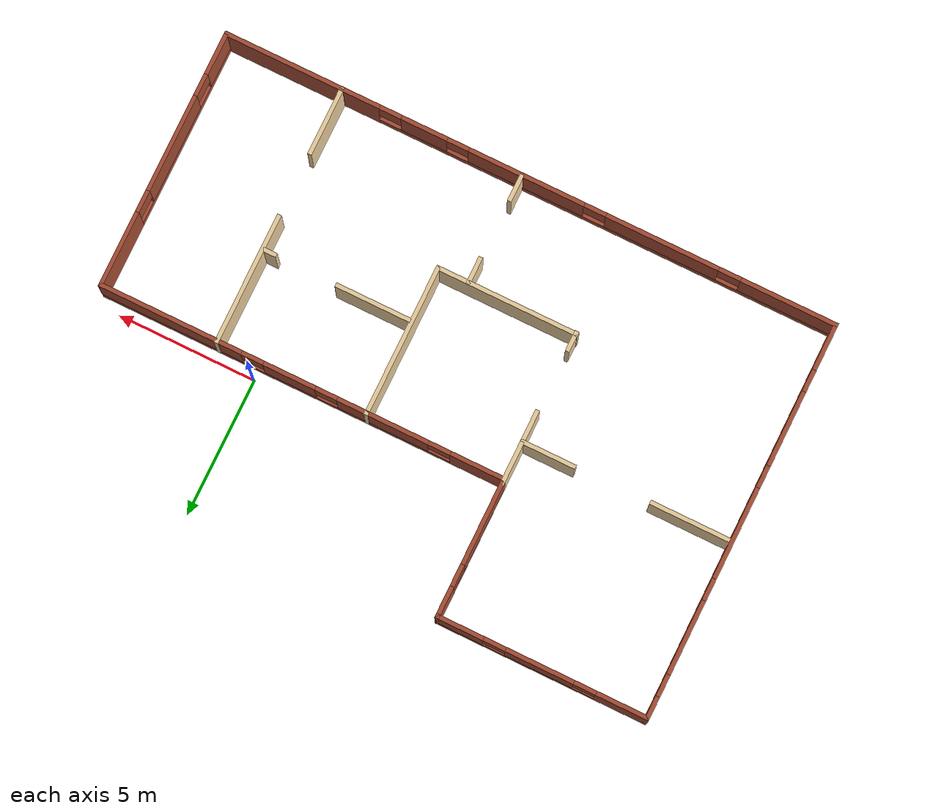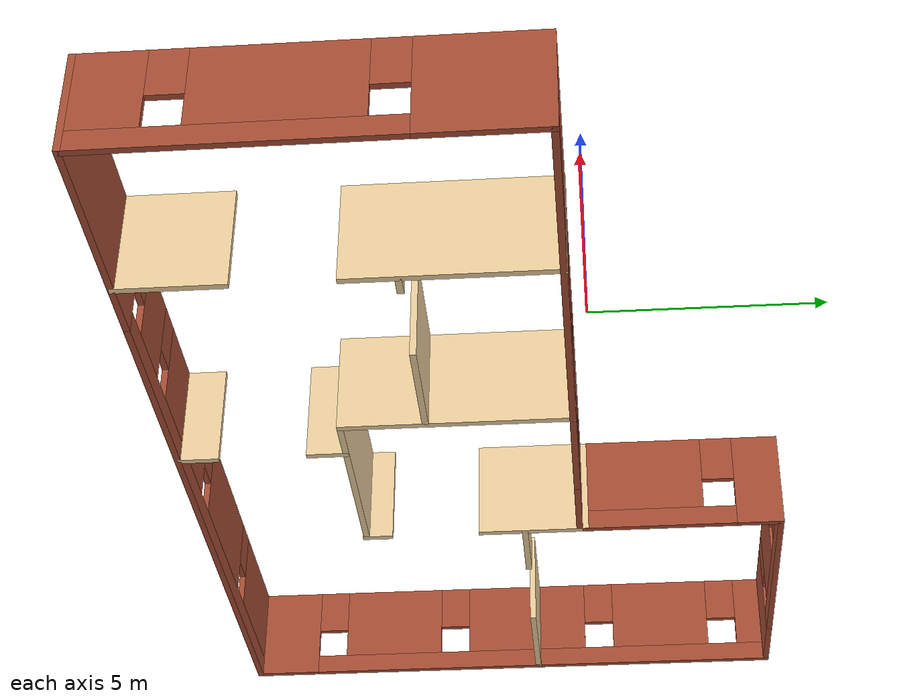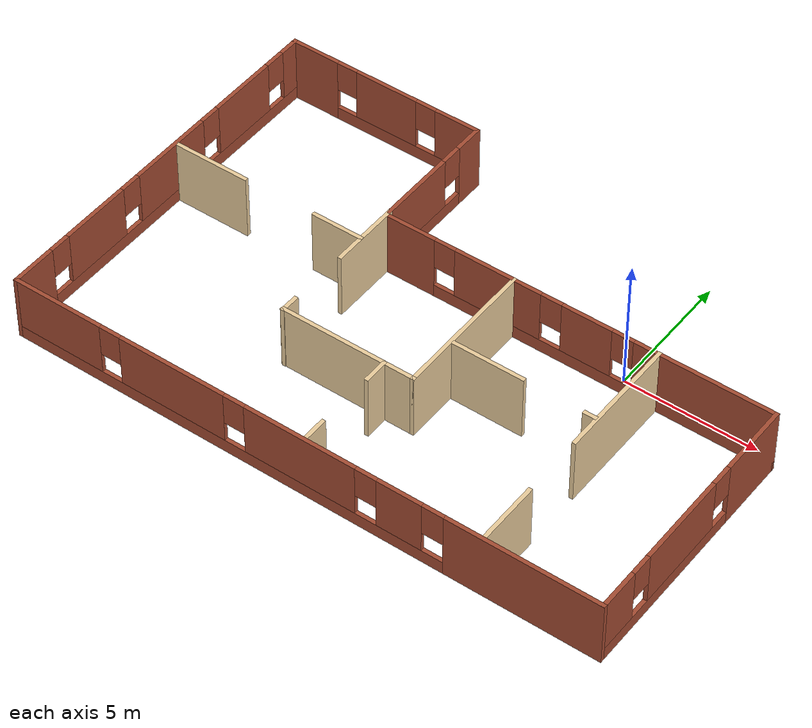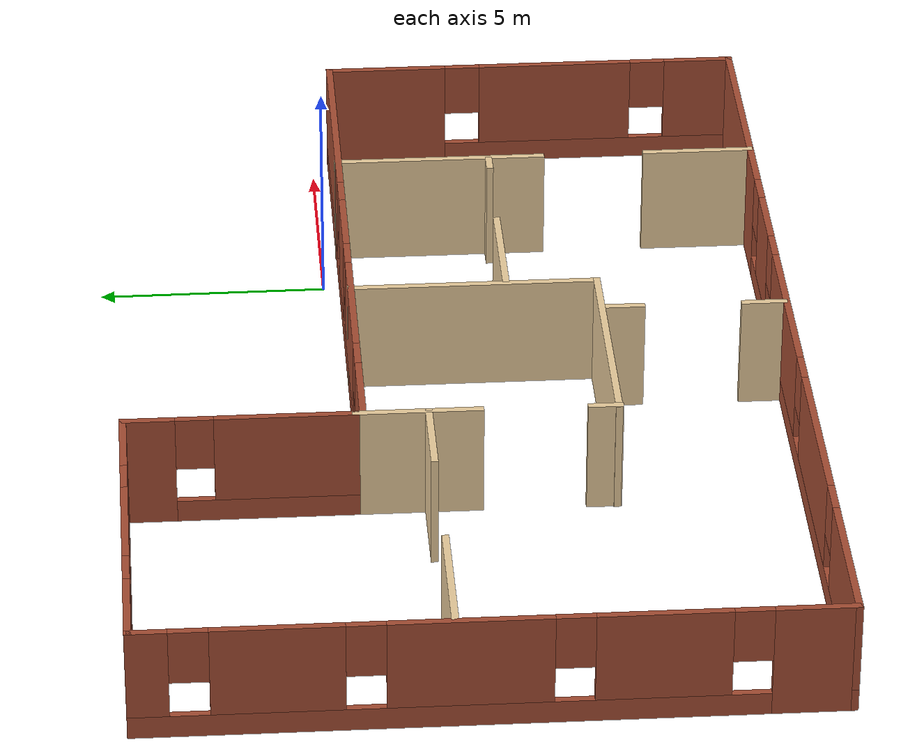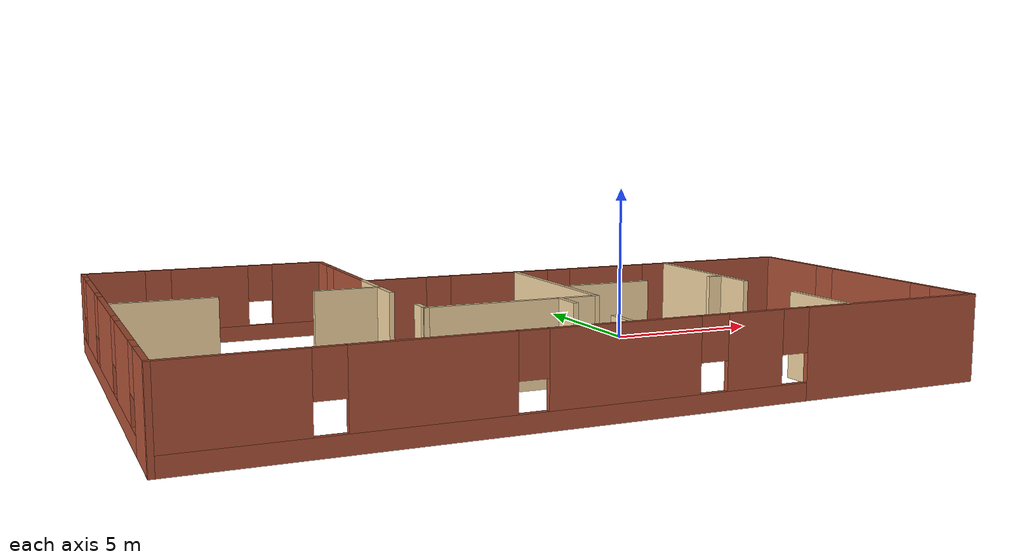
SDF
<?xml version='1.0'?>
<sdf version='1.6'>
  <model name='building'>
    <pose frame=''>-5.47568 -2.60431 0 0 -0 0</pose>
    <link name='Wall_101'>
      <pose frame=''>-3.575 4.75 0 0 -0 -1.5708</pose>
      <visual name='Wall_101_Visual_0'>
        <pose frame=''>-1.91994 0 1.25 0 -0 0</pose>
        <geometry>
          <box>
            <size>1.16012 0.15 2.5</size>
          </box>
        </geometry>
        <material>
          <script>
            <uri>file://media/materials/scripts/gazebo.material</uri>
            <name>Gazebo/Bricks</name>
          </script>
          <ambient>1 1 1 1</ambient>
        </material>
        <meta>
          <layer>0</layer>
        </meta>
      </visual>
      <collision name='Wall_101_Collision_0'>
        <geometry>
          <box>
            <size>1.16012 0.15 2.5</size>
          </box>
        </geometry>
        <pose frame=''>-1.91994 0 1.25 0 -0 0</pose>
      </collision>
      <visual name='Wall_101_Visual_1'>
        <pose frame=''>0.580059 0 0.25 0 -0 0</pose>
        <geometry>
          <box>
            <size>3.83988 0.15 0.5</size>
          </box>
        </geometry>
        <material>
          <script>
            <uri>file://media/materials/scripts/gazebo.material</uri>
            <name>Gazebo/Bricks</name>
          </script>
          <ambient>1 1 1 1</ambient>
        </material>
        <meta>
          <layer>0</layer>
        </meta>
      </visual>
      <collision name='Wall_101_Collision_1'>
        <geometry>
          <box>
            <size>3.83988 0.15 0.5</size>
          </box>
        </geometry>
        <pose frame=''>0.580059 0 0.25 0 -0 0</pose>
      </collision>
      <visual name='Wall_101_Visual_2'>
        <pose frame=''>0.980059 0 1.5 0 -0 0</pose>
        <geometry>
          <box>
            <size>3.03988 0.15 2</size>
          </box>
        </geometry>
        <material>
          <script>
            <uri>file://media/materials/scripts/gazebo.material</uri>
            <name>Gazebo/Bricks</name>
          </script>
          <ambient>1 1 1 1</ambient>
        </material>
        <meta>
          <layer>0</layer>
        </meta>
      </visual>
      <collision name='Wall_101_Collision_2'>
        <geometry>
          <box>
            <size>3.03988 0.15 2</size>
          </box>
        </geometry>
        <pose frame=''>0.980059 0 1.5 0 -0 0</pose>
      </collision>
      <visual name='Wall_101_Visual_3'>
        <pose frame=''>-0.939883 0 1.9 0 -0 0</pose>
        <geometry>
          <box>
            <size>0.8 0.15 1.2</size>
          </box>
        </geometry>
        <material>
          <script>
            <uri>file://media/materials/scripts/gazebo.material</uri>
            <name>Gazebo/Bricks</name>
          </script>
          <ambient>1 1 1 1</ambient>
        </material>
        <meta>
          <layer>0</layer>
        </meta>
      </visual>
      <collision name='Wall_101_Collision_3'>
        <geometry>
          <box>
            <size>0.8 0.15 1.2</size>
          </box>
        </geometry>
        <pose frame=''>-0.939883 0 1.9 0 -0 0</pose>
      </collision>
    </link>
    <link name='Wall_103'>
      <collision name='Wall_103_Collision'>
        <geometry>
          <box>
            <size>2.75 0.15 2.5</size>
          </box>
        </geometry>
        <pose frame=''>0 0 1.25 0 -0 0</pose>
      </collision>
      <visual name='Wall_103_Visual'>
        <pose frame=''>0 0 1.25 0 -0 0</pose>
        <geometry>
          <box>
            <size>2.75 0.15 2.5</size>
          </box>
        </geometry>
        <material>
          <script>
            <uri>file://media/materials/scripts/gazebo.material</uri>
            <name>Gazebo/Grey</name>
          </script>
          <ambient>0.921569 0.807843 0.615686 1</ambient>
        </material>
        <meta>
          <layer>0</layer>
        </meta>
      </visual>
      <pose frame=''>-3.575 1.025 0 0 -0 -1.5708</pose>
    </link>
    <link name='Wall_19'>
      <pose frame=''>3.875 2.175 0 0 -0 0</pose>
      <visual name='Wall_19_Visual_0'>
        <pose frame=''>-6.43713 0 1.25 0 -0 0</pose>
        <geometry>
          <box>
            <size>1.87573 0.15 2.5</size>
          </box>
        </geometry>
        <material>
          <script>
            <uri>file://media/materials/scripts/gazebo.material</uri>
            <name>Gazebo/Bricks</name>
          </script>
          <ambient>1 1 1 1</ambient>
        </material>
        <meta>
          <layer>0</layer>
        </meta>
      </visual>
      <collision name='Wall_19_Collision_0'>
        <geometry>
          <box>
            <size>1.87573 0.15 2.5</size>
          </box>
        </geometry>
        <pose frame=''>-6.43713 0 1.25 0 -0 0</pose>
      </collision>
      <visual name='Wall_19_Visual_1'>
        <pose frame=''>0.937865 0 0.25 0 -0 0</pose>
        <geometry>
          <box>
            <size>12.8743 0.15 0.5</size>
          </box>
        </geometry>
        <material>
          <script>
            <uri>file://media/materials/scripts/gazebo.material</uri>
            <name>Gazebo/Bricks</name>
          </script>
          <ambient>1 1 1 1</ambient>
        </material>
        <meta>
          <layer>0</layer>
        </meta>
      </visual>
      <collision name='Wall_19_Collision_1'>
        <geometry>
          <box>
            <size>12.8743 0.15 0.5</size>
          </box>
        </geometry>
        <pose frame=''>0.937865 0 0.25 0 -0 0</pose>
      </collision>
      <visual name='Wall_19_Visual_2'>
        <pose frame=''>-3.03299 0 1.5 0 -0 0</pose>
        <geometry>
          <box>
            <size>3.33255 0.15 2</size>
          </box>
        </geometry>
        <material>
          <script>
            <uri>file://media/materials/scripts/gazebo.material</uri>
            <name>Gazebo/Bricks</name>
          </script>
          <ambient>1 1 1 1</ambient>
        </material>
        <meta>
          <layer>0</layer>
        </meta>
      </visual>
      <collision name='Wall_19_Collision_2'>
        <geometry>
          <box>
            <size>3.33255 0.15 2</size>
          </box>
        </geometry>
        <pose frame=''>-3.03299 0 1.5 0 -0 0</pose>
      </collision>
      <visual name='Wall_19_Visual_3'>
        <pose frame=''>0.383521 0 1.5 0 -0 0</pose>
        <geometry>
          <box>
            <size>1.90048 0.15 2</size>
          </box>
        </geometry>
        <material>
          <script>
            <uri>file://media/materials/scripts/gazebo.material</uri>
            <name>Gazebo/Bricks</name>
          </script>
          <ambient>1 1 1 1</ambient>
        </material>
        <meta>
          <layer>0</layer>
        </meta>
      </visual>
      <collision name='Wall_19_Collision_3'>
        <geometry>
          <box>
            <size>1.90048 0.15 2</size>
          </box>
        </geometry>
        <pose frame=''>0.383521 0 1.5 0 -0 0</pose>
      </collision>
      <visual name='Wall_19_Visual_4'>
        <pose frame=''>4.75438 0 1.5 0 -0 0</pose>
        <geometry>
          <box>
            <size>5.24124 0.15 2</size>
          </box>
        </geometry>
        <material>
          <script>
            <uri>file://media/materials/scripts/gazebo.material</uri>
            <name>Gazebo/Bricks</name>
          </script>
          <ambient>1 1 1 1</ambient>
        </material>
        <meta>
          <layer>0</layer>
        </meta>
      </visual>
      <collision name='Wall_19_Collision_4'>
        <geometry>
          <box>
            <size>5.24124 0.15 2</size>
          </box>
        </geometry>
        <pose frame=''>4.75438 0 1.5 0 -0 0</pose>
      </collision>
      <visual name='Wall_19_Visual_5'>
        <pose frame=''>-5.09927 0 1.9 0 -0 0</pose>
        <geometry>
          <box>
            <size>0.8 0.15 1.2</size>
          </box>
        </geometry>
        <material>
          <script>
            <uri>file://media/materials/scripts/gazebo.material</uri>
            <name>Gazebo/Bricks</name>
          </script>
          <ambient>1 1 1 1</ambient>
        </material>
        <meta>
          <layer>0</layer>
        </meta>
      </visual>
      <collision name='Wall_19_Collision_5'>
        <geometry>
          <box>
            <size>0.8 0.15 1.2</size>
          </box>
        </geometry>
        <pose frame=''>-5.09927 0 1.9 0 -0 0</pose>
      </collision>
      <visual name='Wall_19_Visual_6'>
        <pose frame=''>-0.966718 0 1.9 0 -0 0</pose>
        <geometry>
          <box>
            <size>0.8 0.15 1.2</size>
          </box>
        </geometry>
        <material>
          <script>
            <uri>file://media/materials/scripts/gazebo.material</uri>
            <name>Gazebo/Bricks</name>
          </script>
          <ambient>1 1 1 1</ambient>
        </material>
        <meta>
          <layer>0</layer>
        </meta>
      </visual>
      <collision name='Wall_19_Collision_6'>
        <geometry>
          <box>
            <size>0.8 0.15 1.2</size>
          </box>
        </geometry>
        <pose frame=''>-0.966718 0 1.9 0 -0 0</pose>
      </collision>
      <visual name='Wall_19_Visual_7'>
        <pose frame=''>1.73376 0 1.9 0 -0 0</pose>
        <geometry>
          <box>
            <size>0.8 0.15 1.2</size>
          </box>
        </geometry>
        <material>
          <script>
            <uri>file://media/materials/scripts/gazebo.material</uri>
            <name>Gazebo/Bricks</name>
          </script>
          <ambient>1 1 1 1</ambient>
        </material>
        <meta>
          <layer>0</layer>
        </meta>
      </visual>
      <collision name='Wall_19_Collision_7'>
        <geometry>
          <box>
            <size>0.8 0.15 1.2</size>
          </box>
        </geometry>
        <pose frame=''>1.73376 0 1.9 0 -0 0</pose>
      </collision>
    </link>
    <link name='Wall_45'>
      <collision name='Wall_45_Collision'>
        <geometry>
          <box>
            <size>3 0.15 2.5</size>
          </box>
        </geometry>
        <pose frame=''>0 0 1.25 0 -0 0</pose>
      </collision>
      <visual name='Wall_45_Visual'>
        <pose frame=''>0 0 1.25 0 -0 0</pose>
        <geometry>
          <box>
            <size>3 0.15 2.5</size>
          </box>
        </geometry>
        <material>
          <script>
            <uri>file://media/materials/scripts/gazebo.material</uri>
            <name>Gazebo/Grey</name>
          </script>
          <ambient>0.921569 0.807843 0.615686 1</ambient>
        </material>
        <meta>
          <layer>0</layer>
        </meta>
      </visual>
      <pose frame=''>-9.70177 0.771555 0 0 -0 0</pose>
    </link>
    <link name='Wall_47'>
      <collision name='Wall_47_Collision'>
        <geometry>
          <box>
            <size>2 0.15 2.5</size>
          </box>
        </geometry>
        <pose frame=''>0 0 1.25 0 -0 0</pose>
      </collision>
      <visual name='Wall_47_Visual'>
        <pose frame=''>0 0 1.25 0 -0 0</pose>
        <geometry>
          <box>
            <size>2 0.15 2.5</size>
          </box>
        </geometry>
        <material>
          <script>
            <uri>file://media/materials/scripts/gazebo.material</uri>
            <name>Gazebo/Grey</name>
          </script>
          <ambient>0.921569 0.807843 0.615686 1</ambient>
        </material>
        <meta>
          <layer>0</layer>
        </meta>
      </visual>
      <pose frame=''>-4.51547 0.805423 0 0 -0 0</pose>
    </link>
    <link name='Wall_60'>
      <collision name='Wall_60_Collision'>
        <geometry>
          <box>
            <size>5.20343 0.15 2.5</size>
          </box>
        </geometry>
        <pose frame=''>0 0 1.25 0 -0 0</pose>
      </collision>
      <visual name='Wall_60_Visual'>
        <pose frame=''>0 0 1.25 0 -0 0</pose>
        <geometry>
          <box>
            <size>5.20343 0.15 2.5</size>
          </box>
        </geometry>
        <material>
          <script>
            <uri>file://media/materials/scripts/gazebo.material</uri>
            <name>Gazebo/Grey</name>
          </script>
          <ambient>0.921569 0.807843 0.615686 1</ambient>
        </material>
        <meta>
          <layer>0</layer>
        </meta>
      </visual>
      <pose frame=''>-1.09679 -3.17412 0 0 -0 0</pose>
    </link>
    <link name='Wall_63'>
      <collision name='Wall_63_Collision'>
        <geometry>
          <box>
            <size>2.75 0.15 2.5</size>
          </box>
        </geometry>
        <pose frame=''>0 0 1.25 0 -0 0</pose>
      </collision>
      <visual name='Wall_63_Visual'>
        <pose frame=''>0 0 1.25 0 -0 0</pose>
        <geometry>
          <box>
            <size>2.75 0.15 2.5</size>
          </box>
        </geometry>
        <material>
          <script>
            <uri>file://media/materials/scripts/gazebo.material</uri>
            <name>Gazebo/Grey</name>
          </script>
          <ambient>0.921569 0.807843 0.615686 1</ambient>
        </material>
        <meta>
          <layer>0</layer>
        </meta>
      </visual>
      <pose frame=''>2.84816 -1.19957 0 0 -0 0</pose>
    </link>
    <link name='Wall_65'>
      <collision name='Wall_65_Collision'>
        <geometry>
          <box>
            <size>4.75 0.15 2.5</size>
          </box>
        </geometry>
        <pose frame=''>0 0 1.25 0 -0 0</pose>
      </collision>
      <visual name='Wall_65_Visual'>
        <pose frame=''>0 0 1.25 0 -0 0</pose>
        <geometry>
          <box>
            <size>4.75 0.15 2.5</size>
          </box>
        </geometry>
        <material>
          <script>
            <uri>file://media/materials/scripts/gazebo.material</uri>
            <name>Gazebo/Grey</name>
          </script>
          <ambient>0.921569 0.807843 0.615686 1</ambient>
        </material>
        <meta>
          <layer>0</layer>
        </meta>
      </visual>
      <pose frame=''>6.90976 -0.111242 0 0 -0 -1.5708</pose>
    </link>
    <link name='Wall_68'>
      <collision name='Wall_68_Collision'>
        <geometry>
          <box>
            <size>2.5 0.15 2.5</size>
          </box>
        </geometry>
        <pose frame=''>0 0 1.25 0 -0 0</pose>
      </collision>
      <visual name='Wall_68_Visual'>
        <pose frame=''>0 0 1.25 0 -0 0</pose>
        <geometry>
          <box>
            <size>2.5 0.15 2.5</size>
          </box>
        </geometry>
        <material>
          <script>
            <uri>file://media/materials/scripts/gazebo.material</uri>
            <name>Gazebo/Grey</name>
          </script>
          <ambient>0.921569 0.807843 0.615686 1</ambient>
        </material>
        <meta>
          <layer>0</layer>
        </meta>
      </visual>
      <pose frame=''>6.91101 -5.97785 0 0 -0 -1.5708</pose>
    </link>
    <link name='Wall_72'>
      <collision name='Wall_72_Collision'>
        <geometry>
          <box>
            <size>0.5 0.15 2.5</size>
          </box>
        </geometry>
        <pose frame=''>0 0 1.25 0 -0 0</pose>
      </collision>
      <visual name='Wall_72_Visual'>
        <pose frame=''>0 0 1.25 0 -0 0</pose>
        <geometry>
          <box>
            <size>0.5 0.15 2.5</size>
          </box>
        </geometry>
        <material>
          <script>
            <uri>file://media/materials/scripts/gazebo.material</uri>
            <name>Gazebo/Grey</name>
          </script>
          <ambient>0.921569 0.807843 0.615686 1</ambient>
        </material>
        <meta>
          <layer>0</layer>
        </meta>
      </visual>
      <pose frame=''>6.65459 -1.22008 0 0 -0 0</pose>
    </link>
    <link name='Wall_75'>
      <collision name='Wall_75_Collision'>
        <geometry>
          <box>
            <size>1 0.15 2.5</size>
          </box>
        </geometry>
        <pose frame=''>0 0 1.25 0 -0 0</pose>
      </collision>
      <visual name='Wall_75_Visual'>
        <pose frame=''>0 0 1.25 0 -0 0</pose>
        <geometry>
          <box>
            <size>1 0.15 2.5</size>
          </box>
        </geometry>
        <material>
          <script>
            <uri>file://media/materials/scripts/gazebo.material</uri>
            <name>Gazebo/Grey</name>
          </script>
          <ambient>0.921569 0.807843 0.615686 1</ambient>
        </material>
        <meta>
          <layer>0</layer>
        </meta>
      </visual>
      <pose frame=''>0.314782 -3.61339 0 0 -0 -1.5708</pose>
    </link>
    <link name='Wall_77'>
      <collision name='Wall_77_Collision'>
        <geometry>
          <box>
            <size>1 0.15 2.5</size>
          </box>
        </geometry>
        <pose frame=''>0 0 1.25 0 -0 0</pose>
      </collision>
      <visual name='Wall_77_Visual'>
        <pose frame=''>0 0 1.25 0 -0 0</pose>
        <geometry>
          <box>
            <size>1 0.15 2.5</size>
          </box>
        </geometry>
        <material>
          <script>
            <uri>file://media/materials/scripts/gazebo.material</uri>
            <name>Gazebo/Grey</name>
          </script>
          <ambient>0.921569 0.807843 0.615686 1</ambient>
        </material>
        <meta>
          <layer>0</layer>
        </meta>
      </visual>
      <pose frame=''>0.289318 -6.69376 0 0 -0 1.5708</pose>
    </link>
    <link name='Wall_80'>
      <collision name='Wall_80_Collision'>
        <geometry>
          <box>
            <size>5.5 0.15 2.5</size>
          </box>
        </geometry>
        <pose frame=''>0 0 1.25 0 -0 0</pose>
      </collision>
      <visual name='Wall_80_Visual'>
        <pose frame=''>0 0 1.25 0 -0 0</pose>
        <geometry>
          <box>
            <size>5.5 0.15 2.5</size>
          </box>
        </geometry>
        <material>
          <script>
            <uri>file://media/materials/scripts/gazebo.material</uri>
            <name>Gazebo/Grey</name>
          </script>
          <ambient>0.921569 0.807843 0.615686 1</ambient>
        </material>
        <meta>
          <layer>0</layer>
        </meta>
      </visual>
      <pose frame=''>1.42992 -0.499121 0 0 -0 1.5708</pose>
    </link>
    <link name='Wall_82'>
      <pose frame=''>11.175 -2.5 0 0 -0 -1.5708</pose>
      <visual name='Wall_82_Visual_0'>
        <pose frame=''>-3.36694 0 1.25 0 -0 0</pose>
        <geometry>
          <box>
            <size>2.76612 0.15 2.5</size>
          </box>
        </geometry>
        <material>
          <script>
            <uri>file://media/materials/scripts/gazebo.material</uri>
            <name>Gazebo/Bricks</name>
          </script>
          <ambient>1 1 1 1</ambient>
        </material>
        <meta>
          <layer>0</layer>
        </meta>
      </visual>
      <collision name='Wall_82_Collision_0'>
        <geometry>
          <box>
            <size>2.76612 0.15 2.5</size>
          </box>
        </geometry>
        <pose frame=''>-3.36694 0 1.25 0 -0 0</pose>
      </collision>
      <visual name='Wall_82_Visual_1'>
        <pose frame=''>1.38306 0 0.25 0 -0 0</pose>
        <geometry>
          <box>
            <size>6.73388 0.15 0.5</size>
          </box>
        </geometry>
        <material>
          <script>
            <uri>file://media/materials/scripts/gazebo.material</uri>
            <name>Gazebo/Bricks</name>
          </script>
          <ambient>1 1 1 1</ambient>
        </material>
        <meta>
          <layer>0</layer>
        </meta>
      </visual>
      <collision name='Wall_82_Collision_1'>
        <geometry>
          <box>
            <size>6.73388 0.15 0.5</size>
          </box>
        </geometry>
        <pose frame=''>1.38306 0 0.25 0 -0 0</pose>
      </collision>
      <visual name='Wall_82_Visual_2'>
        <pose frame=''>0.584685 0 1.5 0 -0 0</pose>
        <geometry>
          <box>
            <size>3.53713 0.15 2</size>
          </box>
        </geometry>
        <material>
          <script>
            <uri>file://media/materials/scripts/gazebo.material</uri>
            <name>Gazebo/Bricks</name>
          </script>
          <ambient>1 1 1 1</ambient>
        </material>
        <meta>
          <layer>0</layer>
        </meta>
      </visual>
      <collision name='Wall_82_Collision_2'>
        <geometry>
          <box>
            <size>3.53713 0.15 2</size>
          </box>
        </geometry>
        <pose frame=''>0.584685 0 1.5 0 -0 0</pose>
      </collision>
      <visual name='Wall_82_Visual_3'>
        <pose frame=''>3.95163 0 1.5 0 -0 0</pose>
        <geometry>
          <box>
            <size>1.59675 0.15 2</size>
          </box>
        </geometry>
        <material>
          <script>
            <uri>file://media/materials/scripts/gazebo.material</uri>
            <name>Gazebo/Bricks</name>
          </script>
          <ambient>1 1 1 1</ambient>
        </material>
        <meta>
          <layer>0</layer>
        </meta>
      </visual>
      <collision name='Wall_82_Collision_3'>
        <geometry>
          <box>
            <size>1.59675 0.15 2</size>
          </box>
        </geometry>
        <pose frame=''>3.95163 0 1.5 0 -0 0</pose>
      </collision>
      <visual name='Wall_82_Visual_4'>
        <pose frame=''>-1.58388 0 1.9 0 -0 0</pose>
        <geometry>
          <box>
            <size>0.8 0.15 1.2</size>
          </box>
        </geometry>
        <material>
          <script>
            <uri>file://media/materials/scripts/gazebo.material</uri>
            <name>Gazebo/Bricks</name>
          </script>
          <ambient>1 1 1 1</ambient>
        </material>
        <meta>
          <layer>0</layer>
        </meta>
      </visual>
      <collision name='Wall_82_Collision_4'>
        <geometry>
          <box>
            <size>0.8 0.15 1.2</size>
          </box>
        </geometry>
        <pose frame=''>-1.58388 0 1.9 0 -0 0</pose>
      </collision>
      <visual name='Wall_82_Visual_5'>
        <pose frame=''>2.75325 0 1.9 0 -0 0</pose>
        <geometry>
          <box>
            <size>0.8 0.15 1.2</size>
          </box>
        </geometry>
        <material>
          <script>
            <uri>file://media/materials/scripts/gazebo.material</uri>
            <name>Gazebo/Bricks</name>
          </script>
          <ambient>1 1 1 1</ambient>
        </material>
        <meta>
          <layer>0</layer>
        </meta>
      </visual>
      <collision name='Wall_82_Collision_5'>
        <geometry>
          <box>
            <size>0.8 0.15 1.2</size>
          </box>
        </geometry>
        <pose frame=''>2.75325 0 1.9 0 -0 0</pose>
      </collision>
    </link>
    <link name='Wall_84'>
      <pose frame=''>1e-06 -7.175 0 0 -0 3.14159</pose>
      <visual name='Wall_84_Visual_0'>
        <pose frame=''>-8.38388 0 1.25 0 -0 0</pose>
        <geometry>
          <box>
            <size>5.73224 0.15 2.5</size>
          </box>
        </geometry>
        <material>
          <script>
            <uri>file://media/materials/scripts/gazebo.material</uri>
            <name>Gazebo/Bricks</name>
          </script>
          <ambient>1 1 1 1</ambient>
        </material>
        <meta>
          <layer>0</layer>
        </meta>
      </visual>
      <collision name='Wall_84_Collision_0'>
        <geometry>
          <box>
            <size>5.73224 0.15 2.5</size>
          </box>
        </geometry>
        <pose frame=''>-8.38388 0 1.25 0 -0 0</pose>
      </collision>
      <visual name='Wall_84_Visual_1'>
        <pose frame=''>2.86612 0 0.25 0 -0 0</pose>
        <geometry>
          <box>
            <size>16.7678 0.15 0.5</size>
          </box>
        </geometry>
        <material>
          <script>
            <uri>file://media/materials/scripts/gazebo.material</uri>
            <name>Gazebo/Bricks</name>
          </script>
          <ambient>1 1 1 1</ambient>
        </material>
        <meta>
          <layer>0</layer>
        </meta>
      </visual>
      <collision name='Wall_84_Collision_1'>
        <geometry>
          <box>
            <size>16.7678 0.15 0.5</size>
          </box>
        </geometry>
        <pose frame=''>2.86612 0 0.25 0 -0 0</pose>
      </collision>
      <visual name='Wall_84_Visual_2'>
        <pose frame=''>-3.87611 0 1.5 0 -0 0</pose>
        <geometry>
          <box>
            <size>1.6833 0.15 2</size>
          </box>
        </geometry>
        <material>
          <script>
            <uri>file://media/materials/scripts/gazebo.material</uri>
            <name>Gazebo/Bricks</name>
          </script>
          <ambient>1 1 1 1</ambient>
        </material>
        <meta>
          <layer>0</layer>
        </meta>
      </visual>
      <collision name='Wall_84_Collision_2'>
        <geometry>
          <box>
            <size>1.6833 0.15 2</size>
          </box>
        </geometry>
        <pose frame=''>-3.87611 0 1.5 0 -0 0</pose>
      </collision>
      <visual name='Wall_84_Visual_3'>
        <pose frame=''>-0.118264 0 1.5 0 -0 0</pose>
        <geometry>
          <box>
            <size>4.2324 0.15 2</size>
          </box>
        </geometry>
        <material>
          <script>
            <uri>file://media/materials/scripts/gazebo.material</uri>
            <name>Gazebo/Bricks</name>
          </script>
          <ambient>1 1 1 1</ambient>
        </material>
        <meta>
          <layer>0</layer>
        </meta>
      </visual>
      <collision name='Wall_84_Collision_3'>
        <geometry>
          <box>
            <size>4.2324 0.15 2</size>
          </box>
        </geometry>
        <pose frame=''>-0.118264 0 1.5 0 -0 0</pose>
      </collision>
      <visual name='Wall_84_Visual_4'>
        <pose frame=''>4.86003 0 1.5 0 -0 0</pose>
        <geometry>
          <box>
            <size>4.12418 0.15 2</size>
          </box>
        </geometry>
        <material>
          <script>
            <uri>file://media/materials/scripts/gazebo.material</uri>
            <name>Gazebo/Bricks</name>
          </script>
          <ambient>1 1 1 1</ambient>
        </material>
        <meta>
          <layer>0</layer>
        </meta>
      </visual>
      <collision name='Wall_84_Collision_4'>
        <geometry>
          <box>
            <size>4.12418 0.15 2</size>
          </box>
        </geometry>
        <pose frame=''>4.86003 0 1.5 0 -0 0</pose>
      </collision>
      <visual name='Wall_84_Visual_5'>
        <pose frame=''>9.48606 0 1.5 0 -0 0</pose>
        <geometry>
          <box>
            <size>3.52788 0.15 2</size>
          </box>
        </geometry>
        <material>
          <script>
            <uri>file://media/materials/scripts/gazebo.material</uri>
            <name>Gazebo/Bricks</name>
          </script>
          <ambient>1 1 1 1</ambient>
        </material>
        <meta>
          <layer>0</layer>
        </meta>
      </visual>
      <collision name='Wall_84_Collision_5'>
        <geometry>
          <box>
            <size>3.52788 0.15 2</size>
          </box>
        </geometry>
        <pose frame=''>9.48606 0 1.5 0 -0 0</pose>
      </collision>
      <visual name='Wall_84_Visual_6'>
        <pose frame=''>-5.11776 0 1.9 0 -0 0</pose>
        <geometry>
          <box>
            <size>0.8 0.15 1.2</size>
          </box>
        </geometry>
        <material>
          <script>
            <uri>file://media/materials/scripts/gazebo.material</uri>
            <name>Gazebo/Bricks</name>
          </script>
          <ambient>1 1 1 1</ambient>
        </material>
        <meta>
          <layer>0</layer>
        </meta>
      </visual>
      <collision name='Wall_84_Collision_6'>
        <geometry>
          <box>
            <size>0.8 0.15 1.2</size>
          </box>
        </geometry>
        <pose frame=''>-5.11776 0 1.9 0 -0 0</pose>
      </collision>
      <visual name='Wall_84_Visual_7'>
        <pose frame=''>-2.63447 0 1.9 0 -0 0</pose>
        <geometry>
          <box>
            <size>0.8 0.15 1.2</size>
          </box>
        </geometry>
        <material>
          <script>
            <uri>file://media/materials/scripts/gazebo.material</uri>
            <name>Gazebo/Bricks</name>
          </script>
          <ambient>1 1 1 1</ambient>
        </material>
        <meta>
          <layer>0</layer>
        </meta>
      </visual>
      <collision name='Wall_84_Collision_7'>
        <geometry>
          <box>
            <size>0.8 0.15 1.2</size>
          </box>
        </geometry>
        <pose frame=''>-2.63447 0 1.9 0 -0 0</pose>
      </collision>
      <visual name='Wall_84_Visual_8'>
        <pose frame=''>2.39794 0 1.9 0 -0 0</pose>
        <geometry>
          <box>
            <size>0.8 0.15 1.2</size>
          </box>
        </geometry>
        <material>
          <script>
            <uri>file://media/materials/scripts/gazebo.material</uri>
            <name>Gazebo/Bricks</name>
          </script>
          <ambient>1 1 1 1</ambient>
        </material>
        <meta>
          <layer>0</layer>
        </meta>
      </visual>
      <collision name='Wall_84_Collision_8'>
        <geometry>
          <box>
            <size>0.8 0.15 1.2</size>
          </box>
        </geometry>
        <pose frame=''>2.39794 0 1.9 0 -0 0</pose>
      </collision>
      <visual name='Wall_84_Visual_9'>
        <pose frame=''>7.32212 0 1.9 0 -0 0</pose>
        <geometry>
          <box>
            <size>0.8 0.15 1.2</size>
          </box>
        </geometry>
        <material>
          <script>
            <uri>file://media/materials/scripts/gazebo.material</uri>
            <name>Gazebo/Bricks</name>
          </script>
          <ambient>1 1 1 1</ambient>
        </material>
        <meta>
          <layer>0</layer>
        </meta>
      </visual>
      <collision name='Wall_84_Collision_9'>
        <geometry>
          <box>
            <size>0.8 0.15 1.2</size>
          </box>
        </geometry>
        <pose frame=''>7.32212 0 1.9 0 -0 0</pose>
      </collision>
    </link>
    <link name='Wall_86'>
      <pose frame=''>-11.175 0 0 0 -0 1.5708</pose>
      <visual name='Wall_86_Visual_0'>
        <pose frame=''>-6.38206 0 1.25 0 -0 0</pose>
        <geometry>
          <box>
            <size>1.73587 0.15 2.5</size>
          </box>
        </geometry>
        <material>
          <script>
            <uri>file://media/materials/scripts/gazebo.material</uri>
            <name>Gazebo/Bricks</name>
          </script>
          <ambient>1 1 1 1</ambient>
        </material>
        <meta>
          <layer>0</layer>
        </meta>
      </visual>
      <collision name='Wall_86_Collision_0'>
        <geometry>
          <box>
            <size>1.73587 0.15 2.5</size>
          </box>
        </geometry>
        <pose frame=''>-6.38206 0 1.25 0 -0 0</pose>
      </collision>
      <visual name='Wall_86_Visual_1'>
        <pose frame=''>0.867936 0 0.25 0 -0 0</pose>
        <geometry>
          <box>
            <size>12.7641 0.15 0.5</size>
          </box>
        </geometry>
        <material>
          <script>
            <uri>file://media/materials/scripts/gazebo.material</uri>
            <name>Gazebo/Bricks</name>
          </script>
          <ambient>1 1 1 1</ambient>
        </material>
        <meta>
          <layer>0</layer>
        </meta>
      </visual>
      <collision name='Wall_86_Collision_1'>
        <geometry>
          <box>
            <size>12.7641 0.15 0.5</size>
          </box>
        </geometry>
        <pose frame=''>0.867936 0 0.25 0 -0 0</pose>
      </collision>
      <visual name='Wall_86_Visual_2'>
        <pose frame=''>-3.35549 0 1.5 0 -0 0</pose>
        <geometry>
          <box>
            <size>2.71727 0.15 2</size>
          </box>
        </geometry>
        <material>
          <script>
            <uri>file://media/materials/scripts/gazebo.material</uri>
            <name>Gazebo/Bricks</name>
          </script>
          <ambient>1 1 1 1</ambient>
        </material>
        <meta>
          <layer>0</layer>
        </meta>
      </visual>
      <collision name='Wall_86_Collision_2'>
        <geometry>
          <box>
            <size>2.71727 0.15 2</size>
          </box>
        </geometry>
        <pose frame=''>-3.35549 0 1.5 0 -0 0</pose>
      </collision>
      <visual name='Wall_86_Visual_3'>
        <pose frame=''>0.461999 0 1.5 0 -0 0</pose>
        <geometry>
          <box>
            <size>3.31771 0.15 2</size>
          </box>
        </geometry>
        <material>
          <script>
            <uri>file://media/materials/scripts/gazebo.material</uri>
            <name>Gazebo/Bricks</name>
          </script>
          <ambient>1 1 1 1</ambient>
        </material>
        <meta>
          <layer>0</layer>
        </meta>
      </visual>
      <collision name='Wall_86_Collision_3'>
        <geometry>
          <box>
            <size>3.31771 0.15 2</size>
          </box>
        </geometry>
        <pose frame=''>0.461999 0 1.5 0 -0 0</pose>
      </collision>
      <visual name='Wall_86_Visual_4'>
        <pose frame=''>4.2598 0 1.5 0 -0 0</pose>
        <geometry>
          <box>
            <size>2.67789 0.15 2</size>
          </box>
        </geometry>
        <material>
          <script>
            <uri>file://media/materials/scripts/gazebo.material</uri>
            <name>Gazebo/Bricks</name>
          </script>
          <ambient>1 1 1 1</ambient>
        </material>
        <meta>
          <layer>0</layer>
        </meta>
      </visual>
      <collision name='Wall_86_Collision_4'>
        <geometry>
          <box>
            <size>2.67789 0.15 2</size>
          </box>
        </geometry>
        <pose frame=''>4.2598 0 1.5 0 -0 0</pose>
      </collision>
      <visual name='Wall_86_Visual_5'>
        <pose frame=''>6.82437 0 1.5 0 -0 0</pose>
        <geometry>
          <box>
            <size>0.851257 0.15 2</size>
          </box>
        </geometry>
        <material>
          <script>
            <uri>file://media/materials/scripts/gazebo.material</uri>
            <name>Gazebo/Bricks</name>
          </script>
          <ambient>1 1 1 1</ambient>
        </material>
        <meta>
          <layer>0</layer>
        </meta>
      </visual>
      <collision name='Wall_86_Collision_5'>
        <geometry>
          <box>
            <size>0.851257 0.15 2</size>
          </box>
        </geometry>
        <pose frame=''>6.82437 0 1.5 0 -0 0</pose>
      </collision>
      <visual name='Wall_86_Visual_6'>
        <pose frame=''>-5.11413 0 1.9 0 -0 0</pose>
        <geometry>
          <box>
            <size>0.8 0.15 1.2</size>
          </box>
        </geometry>
        <material>
          <script>
            <uri>file://media/materials/scripts/gazebo.material</uri>
            <name>Gazebo/Bricks</name>
          </script>
          <ambient>1 1 1 1</ambient>
        </material>
        <meta>
          <layer>0</layer>
        </meta>
      </visual>
      <collision name='Wall_86_Collision_6'>
        <geometry>
          <box>
            <size>0.8 0.15 1.2</size>
          </box>
        </geometry>
        <pose frame=''>-5.11413 0 1.9 0 -0 0</pose>
      </collision>
      <visual name='Wall_86_Visual_7'>
        <pose frame=''>-1.59686 0 1.9 0 -0 0</pose>
        <geometry>
          <box>
            <size>0.8 0.15 1.2</size>
          </box>
        </geometry>
        <material>
          <script>
            <uri>file://media/materials/scripts/gazebo.material</uri>
            <name>Gazebo/Bricks</name>
          </script>
          <ambient>1 1 1 1</ambient>
        </material>
        <meta>
          <layer>0</layer>
        </meta>
      </visual>
      <collision name='Wall_86_Collision_7'>
        <geometry>
          <box>
            <size>0.8 0.15 1.2</size>
          </box>
        </geometry>
        <pose frame=''>-1.59686 0 1.9 0 -0 0</pose>
      </collision>
      <visual name='Wall_86_Visual_8'>
        <pose frame=''>2.52085 0 1.9 0 -0 0</pose>
        <geometry>
          <box>
            <size>0.8 0.15 1.2</size>
          </box>
        </geometry>
        <material>
          <script>
            <uri>file://media/materials/scripts/gazebo.material</uri>
            <name>Gazebo/Bricks</name>
          </script>
          <ambient>1 1 1 1</ambient>
        </material>
        <meta>
          <layer>0</layer>
        </meta>
      </visual>
      <collision name='Wall_86_Collision_8'>
        <geometry>
          <box>
            <size>0.8 0.15 1.2</size>
          </box>
        </geometry>
        <pose frame=''>2.52085 0 1.9 0 -0 0</pose>
      </collision>
      <visual name='Wall_86_Visual_9'>
        <pose frame=''>5.99874 0 1.9 0 -0 0</pose>
        <geometry>
          <box>
            <size>0.8 0.15 1.2</size>
          </box>
        </geometry>
        <material>
          <script>
            <uri>file://media/materials/scripts/gazebo.material</uri>
            <name>Gazebo/Bricks</name>
          </script>
          <ambient>1 1 1 1</ambient>
        </material>
        <meta>
          <layer>0</layer>
        </meta>
      </visual>
      <collision name='Wall_86_Collision_9'>
        <geometry>
          <box>
            <size>0.8 0.15 1.2</size>
          </box>
        </geometry>
        <pose frame=''>5.99874 0 1.9 0 -0 0</pose>
      </collision>
    </link>
    <link name='Wall_94'>
      <collision name='Wall_94_Collision'>
        <geometry>
          <box>
            <size>0.75 0.15 2.5</size>
          </box>
        </geometry>
        <pose frame=''>0 0 1.25 0 -0 0</pose>
      </collision>
      <visual name='Wall_94_Visual'>
        <pose frame=''>0 0 1.25 0 -0 0</pose>
        <geometry>
          <box>
            <size>0.75 0.15 2.5</size>
          </box>
        </geometry>
        <material>
          <script>
            <uri>file://media/materials/scripts/gazebo.material</uri>
            <name>Gazebo/Grey</name>
          </script>
          <ambient>0.921569 0.807843 0.615686 1</ambient>
        </material>
        <meta>
          <layer>0</layer>
        </meta>
      </visual>
      <pose frame=''>-3.60316 -2.89446 0 0 -0 1.5708</pose>
    </link>
    <link name='Wall_98'>
      <pose frame=''>-7.375 7.175 0 0 -0 0</pose>
      <visual name='Wall_98_Visual_0'>
        <pose frame=''>-2.90827 0 1.25 0 -0 0</pose>
        <geometry>
          <box>
            <size>1.93346 0.15 2.5</size>
          </box>
        </geometry>
        <material>
          <script>
            <uri>file://media/materials/scripts/gazebo.material</uri>
            <name>Gazebo/Bricks</name>
          </script>
          <ambient>1 1 1 1</ambient>
        </material>
        <meta>
          <layer>0</layer>
        </meta>
      </visual>
      <collision name='Wall_98_Collision_0'>
        <geometry>
          <box>
            <size>1.93346 0.15 2.5</size>
          </box>
        </geometry>
        <pose frame=''>-2.90827 0 1.25 0 -0 0</pose>
      </collision>
      <visual name='Wall_98_Visual_1'>
        <pose frame=''>0.966729 0 0.25 0 -0 0</pose>
        <geometry>
          <box>
            <size>5.81654 0.15 0.5</size>
          </box>
        </geometry>
        <material>
          <script>
            <uri>file://media/materials/scripts/gazebo.material</uri>
            <name>Gazebo/Bricks</name>
          </script>
          <ambient>1 1 1 1</ambient>
        </material>
        <meta>
          <layer>0</layer>
        </meta>
      </visual>
      <collision name='Wall_98_Collision_1'>
        <geometry>
          <box>
            <size>5.81654 0.15 0.5</size>
          </box>
        </geometry>
        <pose frame=''>0.966729 0 0.25 0 -0 0</pose>
      </collision>
      <visual name='Wall_98_Visual_2'>
        <pose frame=''>0.095112 0 1.5 0 -0 0</pose>
        <geometry>
          <box>
            <size>2.47331 0.15 2</size>
          </box>
        </geometry>
        <material>
          <script>
            <uri>file://media/materials/scripts/gazebo.material</uri>
            <name>Gazebo/Bricks</name>
          </script>
          <ambient>1 1 1 1</ambient>
        </material>
        <meta>
          <layer>0</layer>
        </meta>
      </visual>
      <collision name='Wall_98_Collision_2'>
        <geometry>
          <box>
            <size>2.47331 0.15 2</size>
          </box>
        </geometry>
        <pose frame=''>0.095112 0 1.5 0 -0 0</pose>
      </collision>
      <visual name='Wall_98_Visual_3'>
        <pose frame=''>3.00338 0 1.5 0 -0 0</pose>
        <geometry>
          <box>
            <size>1.74323 0.15 2</size>
          </box>
        </geometry>
        <material>
          <script>
            <uri>file://media/materials/scripts/gazebo.material</uri>
            <name>Gazebo/Bricks</name>
          </script>
          <ambient>1 1 1 1</ambient>
        </material>
        <meta>
          <layer>0</layer>
        </meta>
      </visual>
      <collision name='Wall_98_Collision_3'>
        <geometry>
          <box>
            <size>1.74323 0.15 2</size>
          </box>
        </geometry>
        <pose frame=''>3.00338 0 1.5 0 -0 0</pose>
      </collision>
      <visual name='Wall_98_Visual_4'>
        <pose frame=''>-1.54154 0 1.9 0 -0 0</pose>
        <geometry>
          <box>
            <size>0.8 0.15 1.2</size>
          </box>
        </geometry>
        <material>
          <script>
            <uri>file://media/materials/scripts/gazebo.material</uri>
            <name>Gazebo/Bricks</name>
          </script>
          <ambient>1 1 1 1</ambient>
        </material>
        <meta>
          <layer>0</layer>
        </meta>
      </visual>
      <collision name='Wall_98_Collision_4'>
        <geometry>
          <box>
            <size>0.8 0.15 1.2</size>
          </box>
        </geometry>
        <pose frame=''>-1.54154 0 1.9 0 -0 0</pose>
      </collision>
      <visual name='Wall_98_Visual_5'>
        <pose frame=''>1.73177 0 1.9 0 -0 0</pose>
        <geometry>
          <box>
            <size>0.8 0.15 1.2</size>
          </box>
        </geometry>
        <material>
          <script>
            <uri>file://media/materials/scripts/gazebo.material</uri>
            <name>Gazebo/Bricks</name>
          </script>
          <ambient>1 1 1 1</ambient>
        </material>
        <meta>
          <layer>0</layer>
        </meta>
      </visual>
      <collision name='Wall_98_Collision_5'>
        <geometry>
          <box>
            <size>0.8 0.15 1.2</size>
          </box>
        </geometry>
        <pose frame=''>1.73177 0 1.9 0 -0 0</pose>
      </collision>
    </link>
    <static>1</static>
  </model>
</sdf>
